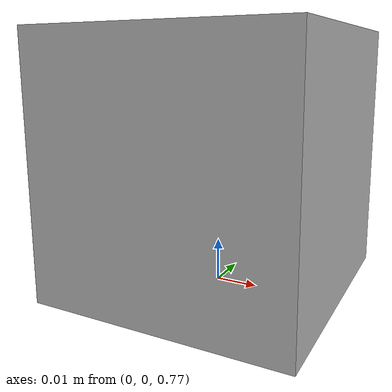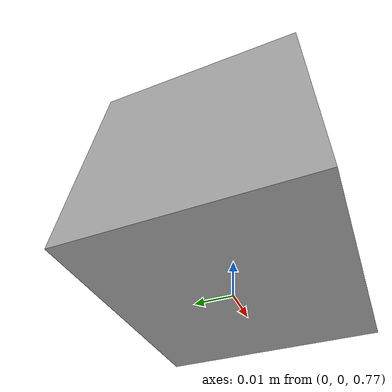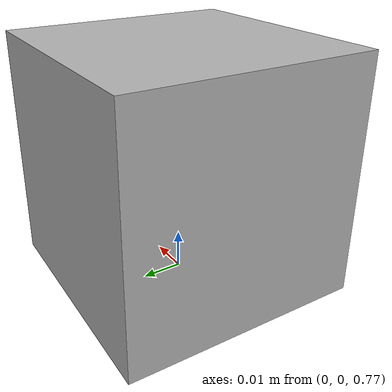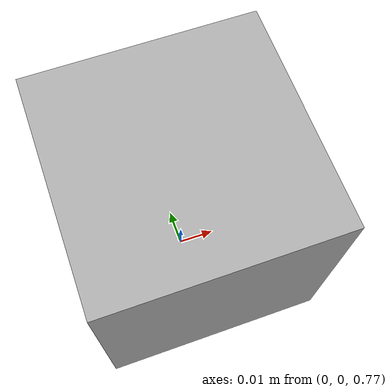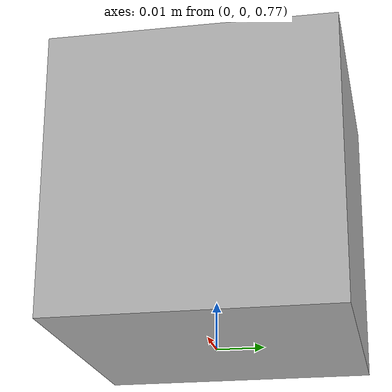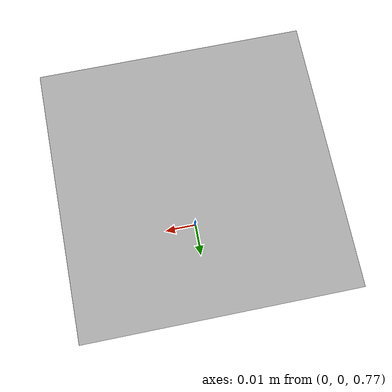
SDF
<?xml version="1.0" ?>
<sdf version="1.6">
  <model name="depth_camera">
    <static>true</static>

    <link name="camera_link">
      <pose>0 0 0.8 0 0 0</pose>

      <visual name="visual">
        <geometry>
          <box>
            <size>0.06 0.06 0.06</size>
          </box>
        </geometry>
        <material>
          <ambient>0.7 0.7 0.7 1</ambient>
          <diffuse>0.7 0.7 0.7 1</diffuse>
        </material>
      </visual>

      <collision name="collision">
        <geometry>
          <box>
            <size>0.06 0.06 0.06</size>
          </box>
        </geometry>
      </collision>

      <sensor name="depth_camera_sensor" type="depth">
        <always_on>true</always_on>
        <update_rate>30</update_rate>
        <visualize>true</visualize>

        <camera>
          <horizontal_fov>1.047</horizontal_fov>
          <image>
            <width>640</width>
            <height>480</height>
            <format>R8G8B8</format>
          </image>
          <clip>
            <near>0.05</near>
            <far>5.0</far>
          </clip>
        </camera>

        <plugin name="gazebo_ros_camera" filename="libgazebo_ros_camera.so">
          <ros>
            <namespace>/camera</namespace>
            <remapping>image_raw:=depth/image_raw</remapping>
            <remapping>camera_info:=depth/camera_info</remapping>
          </ros>
          <frame_name>camera_link</frame_name>
        </plugin>
      </sensor>
    </link>
  </model>
</sdf>
